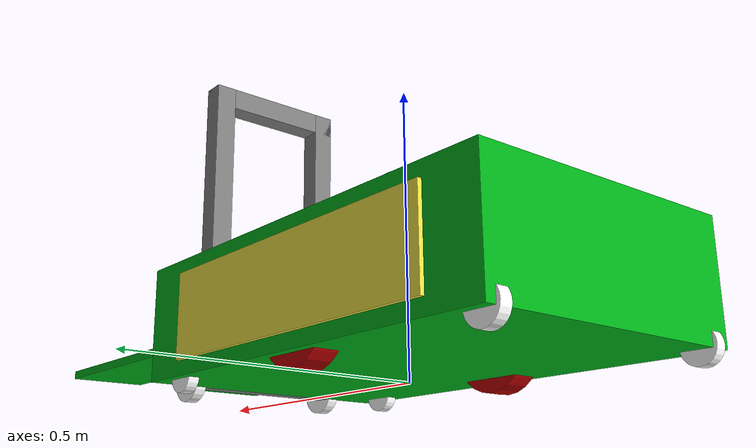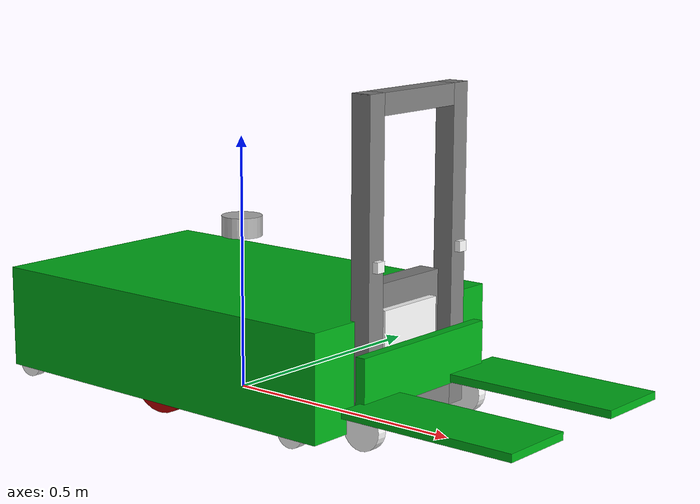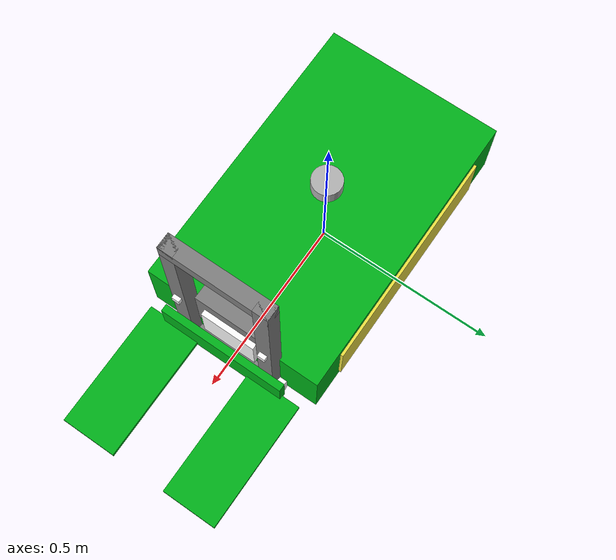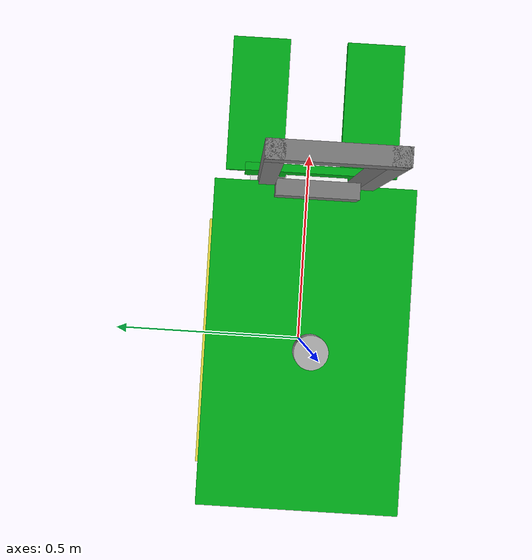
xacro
<?xml version="1.0"?>
<robot name="nebula" xmlns:xacro="http://ros.org/wiki/xacro">

  <!-- Simülasyon/Gerçek mod seçimi -->
  <xacro:arg name="is_sim" default="false"/>
  <xacro:include filename="$(find amr_forklift)/models/nebula_urdf/properties.xacro"/>

  <!-- BASE PROPERTIES -->
  <xacro:property name="base_weight" value="30.0"/>
  <xacro:property name="base_length" value="0.797"/>
  <xacro:property name="base_width" value="0.494"/>
  <xacro:property name="base_height" value="0.201"/>

  <!-- WHEEL PROPERTIES -->
  <!-- 2.0 kg gerçekçi (eski 10.0 kg absürt → aşırı dönme eylemsizliği →
       patinaj + durunca kayma. Eylemsizlik 5 kat azaldı.) -->
  <xacro:property name="wheel_weight" value="2.0"/>
  <xacro:property name="wheel_radius" value="0.075"/>
  <xacro:property name="wheel_length" value="0.045"/>

  <!-- BASE FOOTPRINT -->
  <link name="base_footprint"/>
  <joint name="base_footprint_joint" type="fixed">
    <parent link="base_footprint"/>
    <child link="base_link"/>
    <origin xyz="0 0 0.125" rpy="0 0 0"/>
  </joint>

  <!-- BASE LINK -->
  <link name="base_link">
    <!-- ... inertia, visual, collision ... -->
    <xacro:box_inertia m="${base_weight}" l="${base_length}" w="${base_width}" h="${base_height}"
                         xyz="0 0 0" rpy="0 0 0"/>
    <visual>
      <geometry><box size="${base_length} ${base_width} ${base_height}"/></geometry>
      <material name="green"><color rgba="0.0 0.7 0.1 1"/></material>
    </visual>
    <collision>
      <geometry><box size="${base_length} ${base_width} ${base_height}"/></geometry>
    </collision>
  </link>

  <!-- ÖN İŞARETİ — robotun ileri (+X) yönünü belirtir. Beyaz dikey çubuk. -->
  <link name="front_marker_link">
    <visual>
      <geometry><box size="0.02 0.15 0.12"/></geometry>
      <material name="white"><color rgba="1 1 1 1"/></material>
    </visual>
  </link>
  <joint name="front_marker_joint" type="fixed">
    <parent link="base_link"/>
    <!-- Gövde ön yüzü x=+0.3985; işareti tam öne, biraz dışına yapıştır -->
    <origin xyz="0.405 0 0.05" rpy="0 0 0"/>
    <child link="front_marker_link"/>
  </joint>

  <!-- YAN PANEL — sol yüze (+Y) "NEBULA" yazılı doku -->
  <material name="nebula_label">
    <texture filename="package://amr_forklift/models/nebula_urdf/materials/textures/nebula_label.png"/>
  </material>
  <link name="left_panel_link">
    <visual>
      <geometry><box size="0.6 0.01 0.15"/></geometry>
      <material name="nebula_label"/>
    </visual>
  </link>
  <joint name="left_panel_joint" type="fixed">
    <parent link="base_link"/>
    <!-- Sol yüz y=+0.247; paneli biraz dışına yapıştır -->
    <origin xyz="0 0.249 0.0" rpy="0 0 0"/>
    <child link="left_panel_link"/>
  </joint>

  <!-- WHEEL MACRO -->
  <xacro:macro name="Wheel_Link" params="name x y z w">
    <link name="${name}_link">
      <xacro:cylinder_inertia m="${wheel_weight}" r="${wheel_radius}" h="${wheel_length}" xyz="0 0 0" rpy="0 0 0"/>
      <visual>
        <origin rpy="${pi/2} 0 0"/>
        <geometry><cylinder radius="${wheel_radius}" length="${wheel_length}"/></geometry>
        <material name="red"><color rgba="0.75 0 0 1"/></material>
      </visual>
      <collision>
        <origin rpy="${pi/2} 0 0"/>
        <geometry><cylinder radius="${wheel_radius}" length="${wheel_length}"/></geometry>
      </collision>
    </link>
    <joint name="${name}_joint" type="continuous">
      <parent link="base_link"/>
      <child link="${name}_link"/>
      <origin xyz="${x} ${y} ${z}" rpy="0 0 0"/>
      <axis xyz="0 1 0"/> <!-- Standart eksen -->
      <!-- Damping + friction: robot dururken tekerlek serbest dönmesin -->
      <dynamics damping="1.0" friction="1.0"/>
    </joint>
  </xacro:macro>

  <!-- CASTER WHEEL MACRO — gerçek dönen sarhoş teker (swivel + roll) -->
  <!-- z = swivel gövdesinin base_link'e göre yüksekliği.
       Tekerlek merkezi z-0.045, yarıçap 0.03 → zemin teması z-0.075.
       z=-0.05 verince zemin teması -0.125 = tahrik tekerleğiyle aynı. -->
  <xacro:macro name="Caster_Wheel" params="name x y z">
    <!-- Swivel gövdesi: dikey eksende serbest döner, yönünü kendi bulur -->
    <link name="${name}_mount_link">
      <inertial>
        <mass value="0.2"/>
        <inertia ixx="1e-4" ixy="0" ixz="0" iyy="1e-4" iyz="0" izz="1e-4"/>
      </inertial>
    </link>
    <joint name="${name}_swivel_joint" type="continuous">
      <parent link="base_link"/>
      <child link="${name}_mount_link"/>
      <origin xyz="${x} ${y} ${z}" rpy="0 0 0"/>
      <axis xyz="0 0 1"/>
      <dynamics damping="0.02" friction="0.0"/>
    </joint>

    <!-- Caster tekerleği: yatay eksende yuvarlanır.
         -0.025 trailing offset → robot hareket edince kendini hizalar. -->
    <link name="${name}_link">
      <visual>
        <origin rpy="${pi/2} 0 0"/>
        <geometry><cylinder radius="0.03" length="0.02"/></geometry>
        <material name="white"><color rgba="1 1 1 1"/></material>
      </visual>
      <collision>
        <origin rpy="${pi/2} 0 0"/>
        <geometry><cylinder radius="0.03" length="0.02"/></geometry>
      </collision>
      <inertial>
        <mass value="0.3"/>
        <inertia ixx="1e-4" ixy="0" ixz="0" iyy="1e-4" iyz="0" izz="1e-4"/>
      </inertial>
    </link>
    <joint name="${name}_roll_joint" type="continuous">
      <parent link="${name}_mount_link"/>
      <child link="${name}_link"/>
      <origin xyz="-0.025 0 -0.045" rpy="0 0 0"/>
      <axis xyz="0 1 0"/>
      <dynamics damping="0.001" friction="0.0"/>
    </joint>
  </xacro:macro>

  <!-- WHEELS (Eksenler 1 yapıldı) -->
  <xacro:Wheel_Link name="left_wheel" x="0" y="0.2075" z="-0.05" w="1"/>
  <xacro:Wheel_Link name="right_wheel" x="0" y="-0.2075" z="-0.05" w="1"/>

  <!-- CASTER WHEELS — gerçek dönen sarhoş tekerler.
       z=-0.05: swivel mount yüksekliği. Tekerlek zemin teması -0.125 =
       tahrik tekerleğiyle aynı seviye. Yuvarlanan teker kaymaz, sürüklemez. -->
  <xacro:Caster_Wheel name="caster_fl" x="0.35" y="0.22" z="-0.05"/>
  <xacro:Caster_Wheel name="caster_fr" x="0.35" y="-0.22" z="-0.05"/>
  <xacro:Caster_Wheel name="caster_bl" x="-0.35" y="0.22" z="-0.05"/>
  <xacro:Caster_Wheel name="caster_br" x="-0.35" y="-0.22" z="-0.05"/>

  <!-- LIDAR MACRO -->
  <xacro:macro name="LIDAR" params="x y z">
    <link name="lidar_link">
      <xacro:cylinder_inertia m="0.02" r="0.04" h="0.04" xyz="0 0 0" rpy="0 0 0"/>
      <visual>
        <geometry><cylinder radius="0.04" length="0.04"/></geometry>
        <material name="gray"><color rgba="0.7 0.7 0.7 1"/></material>
      </visual>
      <collision>
        <geometry><cylinder radius="0.04" length="0.04"/></geometry>
      </collision>
    </link>
    <joint name="lidar_joint" type="fixed">
      <parent link="base_link"/>
      <child link="lidar_link"/>
      <origin xyz="${x} ${y} ${z}" rpy="0 0 0"/>
    </joint>
  </xacro:macro>

  <!-- IMU MACRO -->
  <xacro:macro name="IMU" params="x y z">
    <link name="imu_link">
      <xacro:box_inertia m="0.01" l="0.01" w="0.01" h="0.01" xyz="0 0 0" rpy="0 0 0"/>
      <visual>
        <geometry><box size="0.01 0.01 0.01"/></geometry>
        <material name="gray"><color rgba="0.7 0.7 0.7 1"/></material>
      </visual>
      <collision>
        <geometry><box size="0.01 0.01 0.01"/></geometry>
      </collision>
    </link>
    <joint name="imu_joint" type="fixed">
      <parent link="base_link"/>
      <child link="imu_link"/>
      <origin xyz="${x} ${y} ${z}" rpy="0 0 0"/>
    </joint>
  </xacro:macro>

  <!-- SENSORS (Positions) -->
  <xacro:LIDAR x="0" y="0" z="0.2"/>
  <xacro:IMU x="0" y="0" z="0.09"/>

  <!-- DISTANCE SENSOR MACRO -->
  <xacro:macro name="DISTANCE_SENSOR" params="name x y z">
    <link name="${name}_link">
      <xacro:box_inertia m="0.01" l="0.02" w="0.02" h="0.02" xyz="0 0 0" rpy="0 0 0"/>
      <visual>
        <geometry><box size="0.02 0.02 0.02"/></geometry>
        <material name="white"><color rgba="1 1 1 1"/></material>
      </visual>
      <collision>
        <geometry><box size="0.02 0.02 0.02"/></geometry>
      </collision>
    </link>
    <joint name="${name}_joint" type="fixed">
      <parent link="base_link"/>
      <child link="${name}_link"/>
      <origin xyz="${x} ${y} ${z}" rpy="0 0 0"/>
    </joint>
  </xacro:macro>

  <!-- Front Distance Sensors (placed in front of the left/right columns) -->
  <xacro:DISTANCE_SENSOR name="left_sensor" x="0.431" y="0.12" z="0.2"/>
  <xacro:DISTANCE_SENSOR name="right_sensor" x="0.431" y="-0.12" z="0.2"/>

  <!-- FORKLİFT KALDIRMA MEKANİZMASI (DETACHABLE / AYRILABİLİR) -->

  <!-- Forklift Ana Dikey Gövde (Mast) -->
  <link name="forklift_mast_link">
    <inertial>
      <mass value="5.0"/>
      <origin xyz="0.41 0 0.2" rpy="0 0 0"/>
      <inertia ixx="0.1" ixy="0" ixz="0" iyy="0.1" iyz="0" izz="0.05"/>
    </inertial>

    <!-- Sol Dikey Sütun -->
    <visual>
      <origin xyz="0.41 0.12 0.2" rpy="0 0 0"/>
      <geometry><box size="0.04 0.04 0.6"/></geometry>
      <material name="gray"><color rgba="0.5 0.5 0.5 1"/></material>
    </visual>
    <collision>
      <origin xyz="0.41 0.12 0.2" rpy="0 0 0"/>
      <geometry><box size="0.04 0.04 0.6"/></geometry>
    </collision>

    <!-- Sağ Dikey Sütun -->
    <visual>
      <origin xyz="0.41 -0.12 0.2" rpy="0 0 0"/>
      <geometry><box size="0.04 0.04 0.6"/></geometry>
      <material name="gray"><color rgba="0.5 0.5 0.5 1"/></material>
    </visual>
    <collision>
      <origin xyz="0.41 -0.12 0.2" rpy="0 0 0"/>
      <geometry><box size="0.04 0.04 0.6"/></geometry>
    </collision>

    <!-- Üst Bağlantı Plakası -->
    <visual>
      <origin xyz="0.41 0 0.48" rpy="0 0 0"/>
      <geometry><box size="0.04 0.28 0.04"/></geometry>
      <material name="gray"><color rgba="0.5 0.5 0.5 1"/></material>
    </visual>

    <!-- Alt Bağlantı Plakası -->
    <visual>
      <origin xyz="0.41 0 -0.08" rpy="0 0 0"/>
      <geometry><box size="0.04 0.28 0.04"/></geometry>
      <material name="gray"><color rgba="0.5 0.5 0.5 1"/></material>
    </visual>

    <!-- Yan Montaj Braketi -->
    <visual>
      <origin xyz="0.38 0 0.08" rpy="0 0 0"/>
      <geometry><box size="0.04 0.2 0.15"/></geometry>
      <material name="gray"><color rgba="0.5 0.5 0.5 1"/></material>
    </visual>

    <!-- Alt Destek Tekerlekleri -->
    <visual>
      <origin xyz="0.43 0.15 -0.085" rpy="${pi/2} 0 0"/>
      <geometry><cylinder radius="0.04" length="0.02"/></geometry>
      <material name="white"><color rgba="1 1 1 1"/></material>
    </visual>
    <visual>
      <origin xyz="0.43 -0.15 -0.085" rpy="${pi/2} 0 0"/>
      <geometry><cylinder radius="0.04" length="0.02"/></geometry>
      <material name="white"><color rgba="1 1 1 1"/></material>
    </visual>
  </link>

  <!-- Ayrılabilir Mekanik Bağlantı (Coupling Joint) -->
  <joint name="forklift_coupling_joint" type="fixed">
    <parent link="base_link"/>
    <child link="forklift_mast_link"/>
    <origin xyz="0 0 0" rpy="0 0 0"/>
  </joint>

  <!-- Hareketli Fork Taşıyıcı ve Çatal Kolları -->
  <link name="forklift_carriage_link">
    <inertial>
      <mass value="2.0"/>
      <origin xyz="0.5 0 -0.04" rpy="0 0 0"/>
      <inertia ixx="0.02" ixy="0" ixz="0" iyy="0.02" iyz="0" izz="0.02"/>
    </inertial>

    <!-- Taşıyıcı Ayna Plakası -->
    <visual>
      <origin xyz="0.44 0 0.0" rpy="0 0 0"/>
      <geometry><box size="0.02 0.35 0.1"/></geometry>
      <material name="green"><color rgba="0.0 0.7 0.1 1"/></material>
    </visual>
    <collision>
      <origin xyz="0.44 0 0.0" rpy="0 0 0"/>
      <geometry><box size="0.02 0.35 0.1"/></geometry>
    </collision>

    <!-- Sol Çatal Kolu (Genişlik 150mm = 0.15m, Uzunluk 350mm = 0.35m, Ara boşluk 150mm) -->
    <visual>
      <origin xyz="0.615 0.15 -0.04" rpy="0 0 0"/>
      <geometry><box size="0.35 0.15 0.015"/></geometry>
      <material name="green"><color rgba="0.0 0.7 0.1 1"/></material>
    </visual>
    <collision>
      <origin xyz="0.615 0.15 -0.04" rpy="0 0 0"/>
      <geometry><box size="0.35 0.15 0.015"/></geometry>
    </collision>

    <!-- Sağ Çatal Kolu -->
    <visual>
      <origin xyz="0.615 -0.15 -0.04" rpy="0 0 0"/>
      <geometry><box size="0.35 0.15 0.015"/></geometry>
      <material name="green"><color rgba="0.0 0.7 0.1 1"/></material>
    </visual>
    <collision>
      <origin xyz="0.615 -0.15 -0.04" rpy="0 0 0"/>
      <geometry><box size="0.35 0.15 0.015"/></geometry>
    </collision>
  </link>

  <joint name="lift_joint" type="prismatic">
    <parent link="forklift_mast_link"/>
    <child link="forklift_carriage_link"/>
    <origin xyz="0 0 0" rpy="0 0 0"/>
    <axis xyz="0 0 1"/>
    <limit lower="-0.02" upper="0.3" effort="100.0" velocity="0.1"/>
    <dynamics damping="10.0" friction="5.0"/>
  </joint>

  <!-- Simülasyonda: Gazebo eklentilerini yükle -->
  <xacro:if value="$(arg is_sim)">
    <xacro:include filename="$(find amr_forklift)/models/nebula_urdf/gazebo_plugins.xacro"/>
  </xacro:if>

</robot>

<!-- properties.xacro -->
<robot name = "nebula" xmlns:xacro="http://www.ros.org/wiki/xacro">

    <xacro:macro name = "box_inertia" params = "m l w h xyz rpy">
        <inertial>
            <origin xyz = "${xyz}" rpy = "${rpy}" />
            <mass value = "${m}" />
            <inertia ixx = "${(m / 12) * (h*h + w*w)}" ixy = "0" ixz = "0"
                     iyy = "${(m / 12) * (h*h + l*l)}" iyz = "0"
                     izz = "${(m / 12) * (w*w + l*l)}" />
        </inertial>
    </xacro:macro>

    <xacro:macro name = "cylinder_inertia" params = "m r h xyz rpy">
        <inertial>
            <origin xyz = "${xyz}" rpy = "${rpy}" />
            <mass value = "${m}" />
            <inertia ixx = "${(m / 12) * (3*r*r + h*h)}" ixy = "0" ixz = "0"
                     iyy = "${(m / 2)  * (r*r)}" iyz = "0"
                     izz = "${(m / 12) * (3*r*r + h*h)}" />
        </inertial>
    </xacro:macro>

    <xacro:macro name = "sphere_inertia" params = "m r xyz rpy">
        <inertial>
            <origin xyz = "${xyz}" rpy = "${rpy}" />
            <mass value = "${m}" />
            <inertia ixx = "${(2 / 5) * m * r * r}" ixy = "0" ixz = "0"
                     iyy = "${(2 / 5) * m * r * r}" iyz = "0"
                     izz = "${(2 / 5) * m * r * r}" />
        </inertial>
    </xacro:macro>

</robot>
